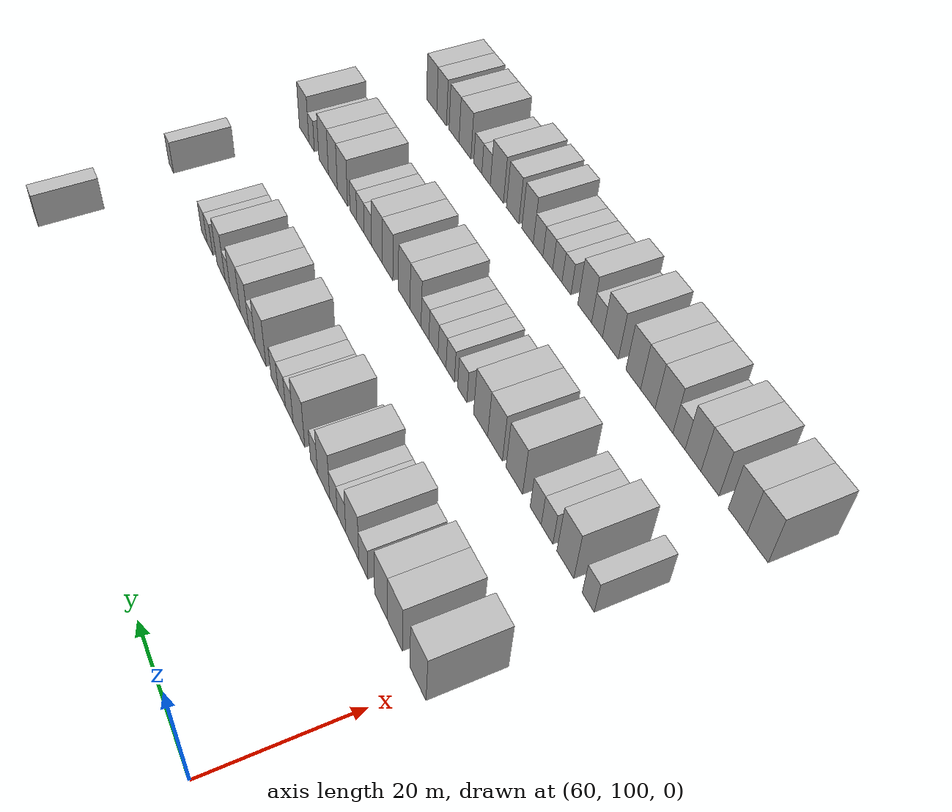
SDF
<sdf version="1.6">
 <world name="default">
  <model name="building_518">
   <static>1</static>
   <pose>69.0000 190.7205 0 0.000000 0.000000 0.000000</pose>
   <link name="link">
    <pose>0 0 3.00 0 0 0</pose>
    <collision name="collision"><geometry><box><size>10.0000 2.7455 6.0000</size></box></geometry></collision>
    <visual name="visual">
     <cast_shadows>0</cast_shadows>
     <geometry><box><size>10.0000 2.7455 6.0000</size></box></geometry>
     <material>
      <script>
       <uri>model://HANNAS_wall/materials/scripts</uri>
       <uri>model://HANNAS_wall/materials/textures</uri>
       <name>vrc/HANNAS_wall</name>
      </script>
     </material>
    </visual>
   </link>
  </model>
  <model name="building_688">
   <static>1</static>
   <pose>91.0000 100.4285 0 0.000000 0.000000 0.000000</pose>
   <link name="link">
    <pose>0 0 4.50 0 0 0</pose>
    <collision name="collision"><geometry><box><size>10.0000 4.3487 9.0000</size></box></geometry></collision>
    <visual name="visual">
     <cast_shadows>0</cast_shadows>
     <geometry><box><size>10.0000 4.3487 9.0000</size></box></geometry>
     <material>
      <script>
       <uri>model://HANNAS_wall/materials/scripts</uri>
       <uri>model://HANNAS_wall/materials/textures</uri>
       <name>vrc/HANNAS_wall</name>
      </script>
     </material>
    </visual>
   </link>
  </model>
  <model name="building_689">
   <static>1</static>
   <pose>91.0000 106.6937 0 0.000000 0.000000 0.000000</pose>
   <link name="link">
    <pose>0 0 4.50 0 0 0</pose>
    <collision name="collision"><geometry><box><size>10.0000 4.1818 9.0000</size></box></geometry></collision>
    <visual name="visual">
     <cast_shadows>0</cast_shadows>
     <geometry><box><size>10.0000 4.1818 9.0000</size></box></geometry>
     <material>
      <script>
       <uri>model://HANNAS_wall/materials/scripts</uri>
       <uri>model://HANNAS_wall/materials/textures</uri>
       <name>vrc/HANNAS_wall</name>
      </script>
     </material>
    </visual>
   </link>
  </model>
  <model name="building_690">
   <static>1</static>
   <pose>91.0000 110.6699 0 0.000000 0.000000 0.000000</pose>
   <link name="link">
    <pose>0 0 4.50 0 0 0</pose>
    <collision name="collision"><geometry><box><size>10.0000 3.7706 9.0000</size></box></geometry></collision>
    <visual name="visual">
     <cast_shadows>0</cast_shadows>
     <geometry><box><size>10.0000 3.7706 9.0000</size></box></geometry>
     <material>
      <script>
       <uri>model://HANNAS_wall/materials/scripts</uri>
       <uri>model://HANNAS_wall/materials/textures</uri>
       <name>vrc/HANNAS_wall</name>
      </script>
     </material>
    </visual>
   </link>
  </model>
  <model name="building_691">
   <static>1</static>
   <pose>91.0000 115.9385 0 0.000000 0.000000 0.000000</pose>
   <link name="link">
    <pose>0 0 3.00 0 0 0</pose>
    <collision name="collision"><geometry><box><size>10.0000 2.7666 6.0000</size></box></geometry></collision>
    <visual name="visual">
     <cast_shadows>0</cast_shadows>
     <geometry><box><size>10.0000 2.7666 6.0000</size></box></geometry>
     <material>
      <script>
       <uri>model://HANNAS_wall/materials/scripts</uri>
       <uri>model://HANNAS_wall/materials/textures</uri>
       <name>vrc/HANNAS_wall</name>
      </script>
     </material>
    </visual>
   </link>
  </model>
  <model name="building_692">
   <static>1</static>
   <pose>91.0000 119.3657 0 0.000000 0.000000 0.000000</pose>
   <link name="link">
    <pose>0 0 4.50 0 0 0</pose>
    <collision name="collision"><geometry><box><size>10.0000 4.0879 9.0000</size></box></geometry></collision>
    <visual name="visual">
     <cast_shadows>0</cast_shadows>
     <geometry><box><size>10.0000 4.0879 9.0000</size></box></geometry>
     <material>
      <script>
       <uri>model://HANNAS_wall/materials/scripts</uri>
       <uri>model://HANNAS_wall/materials/textures</uri>
       <name>vrc/HANNAS_wall</name>
      </script>
     </material>
    </visual>
   </link>
  </model>
  <model name="building_693">
   <static>1</static>
   <pose>91.0000 122.7831 0 0.000000 0.000000 0.000000</pose>
   <link name="link">
    <pose>0 0 3.00 0 0 0</pose>
    <collision name="collision"><geometry><box><size>10.0000 2.7469 6.0000</size></box></geometry></collision>
    <visual name="visual">
     <cast_shadows>0</cast_shadows>
     <geometry><box><size>10.0000 2.7469 6.0000</size></box></geometry>
     <material>
      <script>
       <uri>model://HANNAS_wall/materials/scripts</uri>
       <uri>model://HANNAS_wall/materials/textures</uri>
       <name>vrc/HANNAS_wall</name>
      </script>
     </material>
    </visual>
   </link>
  </model>
  <model name="building_694">
   <static>1</static>
   <pose>91.0000 125.3892 0 0.000000 0.000000 0.000000</pose>
   <link name="link">
    <pose>0 0 3.00 0 0 0</pose>
    <collision name="collision"><geometry><box><size>10.0000 2.4653 6.0000</size></box></geometry></collision>
    <visual name="visual">
     <cast_shadows>0</cast_shadows>
     <geometry><box><size>10.0000 2.4653 6.0000</size></box></geometry>
     <material>
      <script>
       <uri>model://HANNAS_wall/materials/scripts</uri>
       <uri>model://HANNAS_wall/materials/textures</uri>
       <name>vrc/HANNAS_wall</name>
      </script>
     </material>
    </visual>
   </link>
  </model>
  <model name="building_695">
   <static>1</static>
   <pose>91.0000 128.7026 0 0.000000 0.000000 0.000000</pose>
   <link name="link">
    <pose>0 0 4.50 0 0 0</pose>
    <collision name="collision"><geometry><box><size>10.0000 4.1614 9.0000</size></box></geometry></collision>
    <visual name="visual">
     <cast_shadows>0</cast_shadows>
     <geometry><box><size>10.0000 4.1614 9.0000</size></box></geometry>
     <material>
      <script>
       <uri>model://HANNAS_wall/materials/scripts</uri>
       <uri>model://HANNAS_wall/materials/textures</uri>
       <name>vrc/HANNAS_wall</name>
      </script>
     </material>
    </visual>
   </link>
  </model>
  <model name="building_696">
   <static>1</static>
   <pose>91.0000 132.0364 0 0.000000 0.000000 0.000000</pose>
   <link name="link">
    <pose>0 0 3.00 0 0 0</pose>
    <collision name="collision"><geometry><box><size>10.0000 2.5063 6.0000</size></box></geometry></collision>
    <visual name="visual">
     <cast_shadows>0</cast_shadows>
     <geometry><box><size>10.0000 2.5063 6.0000</size></box></geometry>
     <material>
      <script>
       <uri>model://HANNAS_wall/materials/scripts</uri>
       <uri>model://HANNAS_wall/materials/textures</uri>
       <name>vrc/HANNAS_wall</name>
      </script>
     </material>
    </visual>
   </link>
  </model>
  <model name="building_697">
   <static>1</static>
   <pose>91.0000 137.4088 0 0.000000 0.000000 0.000000</pose>
   <link name="link">
    <pose>0 0 4.50 0 0 0</pose>
    <collision name="collision"><geometry><box><size>10.0000 4.2385 9.0000</size></box></geometry></collision>
    <visual name="visual">
     <cast_shadows>0</cast_shadows>
     <geometry><box><size>10.0000 4.2385 9.0000</size></box></geometry>
     <material>
      <script>
       <uri>model://HANNAS_wall/materials/scripts</uri>
       <uri>model://HANNAS_wall/materials/textures</uri>
       <name>vrc/HANNAS_wall</name>
      </script>
     </material>
    </visual>
   </link>
  </model>
  <model name="building_698">
   <static>1</static>
   <pose>91.0000 140.9699 0 0.000000 0.000000 0.000000</pose>
   <link name="link">
    <pose>0 0 3.00 0 0 0</pose>
    <collision name="collision"><geometry><box><size>10.0000 2.8835 6.0000</size></box></geometry></collision>
    <visual name="visual">
     <cast_shadows>0</cast_shadows>
     <geometry><box><size>10.0000 2.8835 6.0000</size></box></geometry>
     <material>
      <script>
       <uri>model://HANNAS_wall/materials/scripts</uri>
       <uri>model://HANNAS_wall/materials/textures</uri>
       <name>vrc/HANNAS_wall</name>
      </script>
     </material>
    </visual>
   </link>
  </model>
  <model name="building_699">
   <static>1</static>
   <pose>91.0000 143.7903 0 0.000000 0.000000 0.000000</pose>
   <link name="link">
    <pose>0 0 3.00 0 0 0</pose>
    <collision name="collision"><geometry><box><size>10.0000 2.7574 6.0000</size></box></geometry></collision>
    <visual name="visual">
     <cast_shadows>0</cast_shadows>
     <geometry><box><size>10.0000 2.7574 6.0000</size></box></geometry>
     <material>
      <script>
       <uri>model://HANNAS_wall/materials/scripts</uri>
       <uri>model://HANNAS_wall/materials/textures</uri>
       <name>vrc/HANNAS_wall</name>
      </script>
     </material>
    </visual>
   </link>
  </model>
  <model name="building_700">
   <static>1</static>
   <pose>91.0000 146.5703 0 0.000000 0.000000 0.000000</pose>
   <link name="link">
    <pose>0 0 3.00 0 0 0</pose>
    <collision name="collision"><geometry><box><size>10.0000 2.8026 6.0000</size></box></geometry></collision>
    <visual name="visual">
     <cast_shadows>0</cast_shadows>
     <geometry><box><size>10.0000 2.8026 6.0000</size></box></geometry>
     <material>
      <script>
       <uri>model://HANNAS_wall/materials/scripts</uri>
       <uri>model://HANNAS_wall/materials/textures</uri>
       <name>vrc/HANNAS_wall</name>
      </script>
     </material>
    </visual>
   </link>
  </model>
  <model name="building_701">
   <static>1</static>
   <pose>91.0000 152.1412 0 0.000000 0.000000 0.000000</pose>
   <link name="link">
    <pose>0 0 4.50 0 0 0</pose>
    <collision name="collision"><geometry><box><size>10.0000 4.3392 9.0000</size></box></geometry></collision>
    <visual name="visual">
     <cast_shadows>0</cast_shadows>
     <geometry><box><size>10.0000 4.3392 9.0000</size></box></geometry>
     <material>
      <script>
       <uri>model://HANNAS_wall/materials/scripts</uri>
       <uri>model://HANNAS_wall/materials/textures</uri>
       <name>vrc/HANNAS_wall</name>
      </script>
     </material>
    </visual>
   </link>
  </model>
  <model name="building_702">
   <static>1</static>
   <pose>91.0000 155.6644 0 0.000000 0.000000 0.000000</pose>
   <link name="link">
    <pose>0 0 3.00 0 0 0</pose>
    <collision name="collision"><geometry><box><size>10.0000 2.7072 6.0000</size></box></geometry></collision>
    <visual name="visual">
     <cast_shadows>0</cast_shadows>
     <geometry><box><size>10.0000 2.7072 6.0000</size></box></geometry>
     <material>
      <script>
       <uri>model://HANNAS_wall/materials/scripts</uri>
       <uri>model://HANNAS_wall/materials/textures</uri>
       <name>vrc/HANNAS_wall</name>
      </script>
     </material>
    </visual>
   </link>
  </model>
  <model name="building_703">
   <static>1</static>
   <pose>91.0000 158.8404 0 0.000000 0.000000 0.000000</pose>
   <link name="link">
    <pose>0 0 4.50 0 0 0</pose>
    <collision name="collision"><geometry><box><size>10.0000 3.6449 9.0000</size></box></geometry></collision>
    <visual name="visual">
     <cast_shadows>0</cast_shadows>
     <geometry><box><size>10.0000 3.6449 9.0000</size></box></geometry>
     <material>
      <script>
       <uri>model://HANNAS_wall/materials/scripts</uri>
       <uri>model://HANNAS_wall/materials/textures</uri>
       <name>vrc/HANNAS_wall</name>
      </script>
     </material>
    </visual>
   </link>
  </model>
  <model name="building_704">
   <static>1</static>
   <pose>91.0000 162.8359 0 0.000000 0.000000 0.000000</pose>
   <link name="link">
    <pose>0 0 4.50 0 0 0</pose>
    <collision name="collision"><geometry><box><size>10.0000 4.3462 9.0000</size></box></geometry></collision>
    <visual name="visual">
     <cast_shadows>0</cast_shadows>
     <geometry><box><size>10.0000 4.3462 9.0000</size></box></geometry>
     <material>
      <script>
       <uri>model://HANNAS_wall/materials/scripts</uri>
       <uri>model://HANNAS_wall/materials/textures</uri>
       <name>vrc/HANNAS_wall</name>
      </script>
     </material>
    </visual>
   </link>
  </model>
  <model name="building_705">
   <static>1</static>
   <pose>91.0000 166.2260 0 0.000000 0.000000 0.000000</pose>
   <link name="link">
    <pose>0 0 3.00 0 0 0</pose>
    <collision name="collision"><geometry><box><size>10.0000 2.4339 6.0000</size></box></geometry></collision>
    <visual name="visual">
     <cast_shadows>0</cast_shadows>
     <geometry><box><size>10.0000 2.4339 6.0000</size></box></geometry>
     <material>
      <script>
       <uri>model://HANNAS_wall/materials/scripts</uri>
       <uri>model://HANNAS_wall/materials/textures</uri>
       <name>vrc/HANNAS_wall</name>
      </script>
     </material>
    </visual>
   </link>
  </model>
  <model name="building_706">
   <static>1</static>
   <pose>91.0000 169.3230 0 0.000000 0.000000 0.000000</pose>
   <link name="link">
    <pose>0 0 4.50 0 0 0</pose>
    <collision name="collision"><geometry><box><size>10.0000 3.7601 9.0000</size></box></geometry></collision>
    <visual name="visual">
     <cast_shadows>0</cast_shadows>
     <geometry><box><size>10.0000 3.7601 9.0000</size></box></geometry>
     <material>
      <script>
       <uri>model://HANNAS_wall/materials/scripts</uri>
       <uri>model://HANNAS_wall/materials/textures</uri>
       <name>vrc/HANNAS_wall</name>
      </script>
     </material>
    </visual>
   </link>
  </model>
  <model name="building_707">
   <static>1</static>
   <pose>91.0000 174.5781 0 0.000000 0.000000 0.000000</pose>
   <link name="link">
    <pose>0 0 3.00 0 0 0</pose>
    <collision name="collision"><geometry><box><size>10.0000 2.7500 6.0000</size></box></geometry></collision>
    <visual name="visual">
     <cast_shadows>0</cast_shadows>
     <geometry><box><size>10.0000 2.7500 6.0000</size></box></geometry>
     <material>
      <script>
       <uri>model://HANNAS_wall/materials/scripts</uri>
       <uri>model://HANNAS_wall/materials/textures</uri>
       <name>vrc/HANNAS_wall</name>
      </script>
     </material>
    </visual>
   </link>
  </model>
  <model name="building_708">
   <static>1</static>
   <pose>91.0000 177.3127 0 0.000000 0.000000 0.000000</pose>
   <link name="link">
    <pose>0 0 3.00 0 0 0</pose>
    <collision name="collision"><geometry><box><size>10.0000 2.7192 6.0000</size></box></geometry></collision>
    <visual name="visual">
     <cast_shadows>0</cast_shadows>
     <geometry><box><size>10.0000 2.7192 6.0000</size></box></geometry>
     <material>
      <script>
       <uri>model://HANNAS_wall/materials/scripts</uri>
       <uri>model://HANNAS_wall/materials/textures</uri>
       <name>vrc/HANNAS_wall</name>
      </script>
     </material>
    </visual>
   </link>
  </model>
  <model name="building_709">
   <static>1</static>
   <pose>91.0000 194.3597 0 0.000000 0.000000 0.000000</pose>
   <link name="link">
    <pose>0 0 3.00 0 0 0</pose>
    <collision name="collision"><geometry><box><size>10.0000 2.4583 6.0000</size></box></geometry></collision>
    <visual name="visual">
     <cast_shadows>0</cast_shadows>
     <geometry><box><size>10.0000 2.4583 6.0000</size></box></geometry>
     <material>
      <script>
       <uri>model://HANNAS_wall/materials/scripts</uri>
       <uri>model://HANNAS_wall/materials/textures</uri>
       <name>vrc/HANNAS_wall</name>
      </script>
     </material>
    </visual>
   </link>
  </model>
  <model name="building_878">
   <static>1</static>
   <pose>113.0000 101.7372 0 0.000000 0.000000 0.000000</pose>
   <link name="link">
    <pose>0 0 3.00 0 0 0</pose>
    <collision name="collision"><geometry><box><size>10.0000 2.7722 6.0000</size></box></geometry></collision>
    <visual name="visual">
     <cast_shadows>0</cast_shadows>
     <geometry><box><size>10.0000 2.7722 6.0000</size></box></geometry>
     <material>
      <script>
       <uri>model://HANNAS_wall/materials/scripts</uri>
       <uri>model://HANNAS_wall/materials/textures</uri>
       <name>vrc/HANNAS_wall</name>
      </script>
     </material>
    </visual>
   </link>
  </model>
  <model name="building_879">
   <static>1</static>
   <pose>113.0000 107.1683 0 0.000000 0.000000 0.000000</pose>
   <link name="link">
    <pose>0 0 4.50 0 0 0</pose>
    <collision name="collision"><geometry><box><size>10.0000 4.0901 9.0000</size></box></geometry></collision>
    <visual name="visual">
     <cast_shadows>0</cast_shadows>
     <geometry><box><size>10.0000 4.0901 9.0000</size></box></geometry>
     <material>
      <script>
       <uri>model://HANNAS_wall/materials/scripts</uri>
       <uri>model://HANNAS_wall/materials/textures</uri>
       <name>vrc/HANNAS_wall</name>
      </script>
     </material>
    </visual>
   </link>
  </model>
  <model name="building_880">
   <static>1</static>
   <pose>113.0000 111.6835 0 0.000000 0.000000 0.000000</pose>
   <link name="link">
    <pose>0 0 3.00 0 0 0</pose>
    <collision name="collision"><geometry><box><size>10.0000 2.9402 6.0000</size></box></geometry></collision>
    <visual name="visual">
     <cast_shadows>0</cast_shadows>
     <geometry><box><size>10.0000 2.9402 6.0000</size></box></geometry>
     <material>
      <script>
       <uri>model://HANNAS_wall/materials/scripts</uri>
       <uri>model://HANNAS_wall/materials/textures</uri>
       <name>vrc/HANNAS_wall</name>
      </script>
     </material>
    </visual>
   </link>
  </model>
  <model name="building_881">
   <static>1</static>
   <pose>113.0000 114.5744 0 0.000000 0.000000 0.000000</pose>
   <link name="link">
    <pose>0 0 3.00 0 0 0</pose>
    <collision name="collision"><geometry><box><size>10.0000 2.8418 6.0000</size></box></geometry></collision>
    <visual name="visual">
     <cast_shadows>0</cast_shadows>
     <geometry><box><size>10.0000 2.8418 6.0000</size></box></geometry>
     <material>
      <script>
       <uri>model://HANNAS_wall/materials/scripts</uri>
       <uri>model://HANNAS_wall/materials/textures</uri>
       <name>vrc/HANNAS_wall</name>
      </script>
     </material>
    </visual>
   </link>
  </model>
  <model name="building_882">
   <static>1</static>
   <pose>113.0000 120.2278 0 0.000000 0.000000 0.000000</pose>
   <link name="link">
    <pose>0 0 4.50 0 0 0</pose>
    <collision name="collision"><geometry><box><size>10.0000 4.4649 9.0000</size></box></geometry></collision>
    <visual name="visual">
     <cast_shadows>0</cast_shadows>
     <geometry><box><size>10.0000 4.4649 9.0000</size></box></geometry>
     <material>
      <script>
       <uri>model://HANNAS_wall/materials/scripts</uri>
       <uri>model://HANNAS_wall/materials/textures</uri>
       <name>vrc/HANNAS_wall</name>
      </script>
     </material>
    </visual>
   </link>
  </model>
  <model name="building_883">
   <static>1</static>
   <pose>113.0000 125.5309 0 0.000000 0.000000 0.000000</pose>
   <link name="link">
    <pose>0 0 4.50 0 0 0</pose>
    <collision name="collision"><geometry><box><size>10.0000 4.1413 9.0000</size></box></geometry></collision>
    <visual name="visual">
     <cast_shadows>0</cast_shadows>
     <geometry><box><size>10.0000 4.1413 9.0000</size></box></geometry>
     <material>
      <script>
       <uri>model://HANNAS_wall/materials/scripts</uri>
       <uri>model://HANNAS_wall/materials/textures</uri>
       <name>vrc/HANNAS_wall</name>
      </script>
     </material>
    </visual>
   </link>
  </model>
  <model name="building_884">
   <static>1</static>
   <pose>113.0000 129.6614 0 0.000000 0.000000 0.000000</pose>
   <link name="link">
    <pose>0 0 4.50 0 0 0</pose>
    <collision name="collision"><geometry><box><size>10.0000 4.1196 9.0000</size></box></geometry></collision>
    <visual name="visual">
     <cast_shadows>0</cast_shadows>
     <geometry><box><size>10.0000 4.1196 9.0000</size></box></geometry>
     <material>
      <script>
       <uri>model://HANNAS_wall/materials/scripts</uri>
       <uri>model://HANNAS_wall/materials/textures</uri>
       <name>vrc/HANNAS_wall</name>
      </script>
     </material>
    </visual>
   </link>
  </model>
  <model name="building_885">
   <static>1</static>
   <pose>113.0000 135.1203 0 0.000000 0.000000 0.000000</pose>
   <link name="link">
    <pose>0 0 3.00 0 0 0</pose>
    <collision name="collision"><geometry><box><size>10.0000 2.7982 6.0000</size></box></geometry></collision>
    <visual name="visual">
     <cast_shadows>0</cast_shadows>
     <geometry><box><size>10.0000 2.7982 6.0000</size></box></geometry>
     <material>
      <script>
       <uri>model://HANNAS_wall/materials/scripts</uri>
       <uri>model://HANNAS_wall/materials/textures</uri>
       <name>vrc/HANNAS_wall</name>
      </script>
     </material>
    </visual>
   </link>
  </model>
  <model name="building_886">
   <static>1</static>
   <pose>113.0000 138.8276 0 0.000000 0.000000 0.000000</pose>
   <link name="link">
    <pose>0 0 3.00 0 0 0</pose>
    <collision name="collision"><geometry><box><size>10.0000 2.6165 6.0000</size></box></geometry></collision>
    <visual name="visual">
     <cast_shadows>0</cast_shadows>
     <geometry><box><size>10.0000 2.6165 6.0000</size></box></geometry>
     <material>
      <script>
       <uri>model://HANNAS_wall/materials/scripts</uri>
       <uri>model://HANNAS_wall/materials/textures</uri>
       <name>vrc/HANNAS_wall</name>
      </script>
     </material>
    </visual>
   </link>
  </model>
  <model name="building_887">
   <static>1</static>
   <pose>113.0000 141.4063 0 0.000000 0.000000 0.000000</pose>
   <link name="link">
    <pose>0 0 3.00 0 0 0</pose>
    <collision name="collision"><geometry><box><size>10.0000 2.5409 6.0000</size></box></geometry></collision>
    <visual name="visual">
     <cast_shadows>0</cast_shadows>
     <geometry><box><size>10.0000 2.5409 6.0000</size></box></geometry>
     <material>
      <script>
       <uri>model://HANNAS_wall/materials/scripts</uri>
       <uri>model://HANNAS_wall/materials/textures</uri>
       <name>vrc/HANNAS_wall</name>
      </script>
     </material>
    </visual>
   </link>
  </model>
  <model name="building_888">
   <static>1</static>
   <pose>113.0000 144.1603 0 0.000000 0.000000 0.000000</pose>
   <link name="link">
    <pose>0 0 3.00 0 0 0</pose>
    <collision name="collision"><geometry><box><size>10.0000 2.9670 6.0000</size></box></geometry></collision>
    <visual name="visual">
     <cast_shadows>0</cast_shadows>
     <geometry><box><size>10.0000 2.9670 6.0000</size></box></geometry>
     <material>
      <script>
       <uri>model://HANNAS_wall/materials/scripts</uri>
       <uri>model://HANNAS_wall/materials/textures</uri>
       <name>vrc/HANNAS_wall</name>
      </script>
     </material>
    </visual>
   </link>
  </model>
  <model name="building_889">
   <static>1</static>
   <pose>113.0000 146.9454 0 0.000000 0.000000 0.000000</pose>
   <link name="link">
    <pose>0 0 3.00 0 0 0</pose>
    <collision name="collision"><geometry><box><size>10.0000 2.6033 6.0000</size></box></geometry></collision>
    <visual name="visual">
     <cast_shadows>0</cast_shadows>
     <geometry><box><size>10.0000 2.6033 6.0000</size></box></geometry>
     <material>
      <script>
       <uri>model://HANNAS_wall/materials/scripts</uri>
       <uri>model://HANNAS_wall/materials/textures</uri>
       <name>vrc/HANNAS_wall</name>
      </script>
     </material>
    </visual>
   </link>
  </model>
  <model name="building_890">
   <static>1</static>
   <pose>113.0000 150.1318 0 0.000000 0.000000 0.000000</pose>
   <link name="link">
    <pose>0 0 4.50 0 0 0</pose>
    <collision name="collision"><geometry><box><size>10.0000 3.7696 9.0000</size></box></geometry></collision>
    <visual name="visual">
     <cast_shadows>0</cast_shadows>
     <geometry><box><size>10.0000 3.7696 9.0000</size></box></geometry>
     <material>
      <script>
       <uri>model://HANNAS_wall/materials/scripts</uri>
       <uri>model://HANNAS_wall/materials/textures</uri>
       <name>vrc/HANNAS_wall</name>
      </script>
     </material>
    </visual>
   </link>
  </model>
  <model name="building_891">
   <static>1</static>
   <pose>113.0000 154.0256 0 0.000000 0.000000 0.000000</pose>
   <link name="link">
    <pose>0 0 4.50 0 0 0</pose>
    <collision name="collision"><geometry><box><size>10.0000 4.0179 9.0000</size></box></geometry></collision>
    <visual name="visual">
     <cast_shadows>0</cast_shadows>
     <geometry><box><size>10.0000 4.0179 9.0000</size></box></geometry>
     <material>
      <script>
       <uri>model://HANNAS_wall/materials/scripts</uri>
       <uri>model://HANNAS_wall/materials/textures</uri>
       <name>vrc/HANNAS_wall</name>
      </script>
     </material>
    </visual>
   </link>
  </model>
  <model name="building_892">
   <static>1</static>
   <pose>113.0000 159.9614 0 0.000000 0.000000 0.000000</pose>
   <link name="link">
    <pose>0 0 4.50 0 0 0</pose>
    <collision name="collision"><geometry><box><size>10.0000 3.8539 9.0000</size></box></geometry></collision>
    <visual name="visual">
     <cast_shadows>0</cast_shadows>
     <geometry><box><size>10.0000 3.8539 9.0000</size></box></geometry>
     <material>
      <script>
       <uri>model://HANNAS_wall/materials/scripts</uri>
       <uri>model://HANNAS_wall/materials/textures</uri>
       <name>vrc/HANNAS_wall</name>
      </script>
     </material>
    </visual>
   </link>
  </model>
  <model name="building_893">
   <static>1</static>
   <pose>113.0000 163.8826 0 0.000000 0.000000 0.000000</pose>
   <link name="link">
    <pose>0 0 4.50 0 0 0</pose>
    <collision name="collision"><geometry><box><size>10.0000 3.9885 9.0000</size></box></geometry></collision>
    <visual name="visual">
     <cast_shadows>0</cast_shadows>
     <geometry><box><size>10.0000 3.9885 9.0000</size></box></geometry>
     <material>
      <script>
       <uri>model://HANNAS_wall/materials/scripts</uri>
       <uri>model://HANNAS_wall/materials/textures</uri>
       <name>vrc/HANNAS_wall</name>
      </script>
     </material>
    </visual>
   </link>
  </model>
  <model name="building_894">
   <static>1</static>
   <pose>113.0000 167.3027 0 0.000000 0.000000 0.000000</pose>
   <link name="link">
    <pose>0 0 3.00 0 0 0</pose>
    <collision name="collision"><geometry><box><size>10.0000 2.8518 6.0000</size></box></geometry></collision>
    <visual name="visual">
     <cast_shadows>0</cast_shadows>
     <geometry><box><size>10.0000 2.8518 6.0000</size></box></geometry>
     <material>
      <script>
       <uri>model://HANNAS_wall/materials/scripts</uri>
       <uri>model://HANNAS_wall/materials/textures</uri>
       <name>vrc/HANNAS_wall</name>
      </script>
     </material>
    </visual>
   </link>
  </model>
  <model name="building_895">
   <static>1</static>
   <pose>113.0000 170.1723 0 0.000000 0.000000 0.000000</pose>
   <link name="link">
    <pose>0 0 3.00 0 0 0</pose>
    <collision name="collision"><geometry><box><size>10.0000 2.8874 6.0000</size></box></geometry></collision>
    <visual name="visual">
     <cast_shadows>0</cast_shadows>
     <geometry><box><size>10.0000 2.8874 6.0000</size></box></geometry>
     <material>
      <script>
       <uri>model://HANNAS_wall/materials/scripts</uri>
       <uri>model://HANNAS_wall/materials/textures</uri>
       <name>vrc/HANNAS_wall</name>
      </script>
     </material>
    </visual>
   </link>
  </model>
  <model name="building_896">
   <static>1</static>
   <pose>113.0000 172.9494 0 0.000000 0.000000 0.000000</pose>
   <link name="link">
    <pose>0 0 3.00 0 0 0</pose>
    <collision name="collision"><geometry><box><size>10.0000 2.6667 6.0000</size></box></geometry></collision>
    <visual name="visual">
     <cast_shadows>0</cast_shadows>
     <geometry><box><size>10.0000 2.6667 6.0000</size></box></geometry>
     <material>
      <script>
       <uri>model://HANNAS_wall/materials/scripts</uri>
       <uri>model://HANNAS_wall/materials/textures</uri>
       <name>vrc/HANNAS_wall</name>
      </script>
     </material>
    </visual>
   </link>
  </model>
  <model name="building_897">
   <static>1</static>
   <pose>113.0000 177.3713 0 0.000000 0.000000 0.000000</pose>
   <link name="link">
    <pose>0 0 4.50 0 0 0</pose>
    <collision name="collision"><geometry><box><size>10.0000 4.1772 9.0000</size></box></geometry></collision>
    <visual name="visual">
     <cast_shadows>0</cast_shadows>
     <geometry><box><size>10.0000 4.1772 9.0000</size></box></geometry>
     <material>
      <script>
       <uri>model://HANNAS_wall/materials/scripts</uri>
       <uri>model://HANNAS_wall/materials/textures</uri>
       <name>vrc/HANNAS_wall</name>
      </script>
     </material>
    </visual>
   </link>
  </model>
  <model name="building_898">
   <static>1</static>
   <pose>113.0000 181.3250 0 0.000000 0.000000 0.000000</pose>
   <link name="link">
    <pose>0 0 4.50 0 0 0</pose>
    <collision name="collision"><geometry><box><size>10.0000 3.7302 9.0000</size></box></geometry></collision>
    <visual name="visual">
     <cast_shadows>0</cast_shadows>
     <geometry><box><size>10.0000 3.7302 9.0000</size></box></geometry>
     <material>
      <script>
       <uri>model://HANNAS_wall/materials/scripts</uri>
       <uri>model://HANNAS_wall/materials/textures</uri>
       <name>vrc/HANNAS_wall</name>
      </script>
     </material>
    </visual>
   </link>
  </model>
  <model name="building_899">
   <static>1</static>
   <pose>113.0000 185.2459 0 0.000000 0.000000 0.000000</pose>
   <link name="link">
    <pose>0 0 4.50 0 0 0</pose>
    <collision name="collision"><geometry><box><size>10.0000 4.1116 9.0000</size></box></geometry></collision>
    <visual name="visual">
     <cast_shadows>0</cast_shadows>
     <geometry><box><size>10.0000 4.1116 9.0000</size></box></geometry>
     <material>
      <script>
       <uri>model://HANNAS_wall/materials/scripts</uri>
       <uri>model://HANNAS_wall/materials/textures</uri>
       <name>vrc/HANNAS_wall</name>
      </script>
     </material>
    </visual>
   </link>
  </model>
  <model name="building_900">
   <static>1</static>
   <pose>113.0000 190.5273 0 0.000000 0.000000 0.000000</pose>
   <link name="link">
    <pose>0 0 3.00 0 0 0</pose>
    <collision name="collision"><geometry><box><size>10.0000 2.4511 6.0000</size></box></geometry></collision>
    <visual name="visual">
     <cast_shadows>0</cast_shadows>
     <geometry><box><size>10.0000 2.4511 6.0000</size></box></geometry>
     <material>
      <script>
       <uri>model://HANNAS_wall/materials/scripts</uri>
       <uri>model://HANNAS_wall/materials/textures</uri>
       <name>vrc/HANNAS_wall</name>
      </script>
     </material>
    </visual>
   </link>
  </model>
  <model name="building_901">
   <static>1</static>
   <pose>113.0000 193.8983 0 0.000000 0.000000 0.000000</pose>
   <link name="link">
    <pose>0 0 4.50 0 0 0</pose>
    <collision name="collision"><geometry><box><size>10.0000 4.2910 9.0000</size></box></geometry></collision>
    <visual name="visual">
     <cast_shadows>0</cast_shadows>
     <geometry><box><size>10.0000 4.2910 9.0000</size></box></geometry>
     <material>
      <script>
       <uri>model://HANNAS_wall/materials/scripts</uri>
       <uri>model://HANNAS_wall/materials/textures</uri>
       <name>vrc/HANNAS_wall</name>
      </script>
     </material>
    </visual>
   </link>
  </model>
  <model name="building_1070">
   <static>1</static>
   <pose>135.0000 100.0792 0 0.000000 0.000000 0.000000</pose>
   <link name="link">
    <pose>0 0 4.50 0 0 0</pose>
    <collision name="collision"><geometry><box><size>10.0000 4.3160 9.0000</size></box></geometry></collision>
    <visual name="visual">
     <cast_shadows>0</cast_shadows>
     <geometry><box><size>10.0000 4.3160 9.0000</size></box></geometry>
     <material>
      <script>
       <uri>model://HANNAS_wall/materials/scripts</uri>
       <uri>model://HANNAS_wall/materials/textures</uri>
       <name>vrc/HANNAS_wall</name>
      </script>
     </material>
    </visual>
   </link>
  </model>
  <model name="building_1071">
   <static>1</static>
   <pose>135.0000 104.2163 0 0.000000 0.000000 0.000000</pose>
   <link name="link">
    <pose>0 0 4.50 0 0 0</pose>
    <collision name="collision"><geometry><box><size>10.0000 3.9583 9.0000</size></box></geometry></collision>
    <visual name="visual">
     <cast_shadows>0</cast_shadows>
     <geometry><box><size>10.0000 3.9583 9.0000</size></box></geometry>
     <material>
      <script>
       <uri>model://HANNAS_wall/materials/scripts</uri>
       <uri>model://HANNAS_wall/materials/textures</uri>
       <name>vrc/HANNAS_wall</name>
      </script>
     </material>
    </visual>
   </link>
  </model>
  <model name="building_1072">
   <static>1</static>
   <pose>135.0000 110.2086 0 0.000000 0.000000 0.000000</pose>
   <link name="link">
    <pose>0 0 4.50 0 0 0</pose>
    <collision name="collision"><geometry><box><size>10.0000 4.0262 9.0000</size></box></geometry></collision>
    <visual name="visual">
     <cast_shadows>0</cast_shadows>
     <geometry><box><size>10.0000 4.0262 9.0000</size></box></geometry>
     <material>
      <script>
       <uri>model://HANNAS_wall/materials/scripts</uri>
       <uri>model://HANNAS_wall/materials/textures</uri>
       <name>vrc/HANNAS_wall</name>
      </script>
     </material>
    </visual>
   </link>
  </model>
  <model name="building_1073">
   <static>1</static>
   <pose>135.0000 114.0399 0 0.000000 0.000000 0.000000</pose>
   <link name="link">
    <pose>0 0 4.50 0 0 0</pose>
    <collision name="collision"><geometry><box><size>10.0000 3.6364 9.0000</size></box></geometry></collision>
    <visual name="visual">
     <cast_shadows>0</cast_shadows>
     <geometry><box><size>10.0000 3.6364 9.0000</size></box></geometry>
     <material>
      <script>
       <uri>model://HANNAS_wall/materials/scripts</uri>
       <uri>model://HANNAS_wall/materials/textures</uri>
       <name>vrc/HANNAS_wall</name>
      </script>
     </material>
    </visual>
   </link>
  </model>
  <model name="building_1074">
   <static>1</static>
   <pose>135.0000 117.2837 0 0.000000 0.000000 0.000000</pose>
   <link name="link">
    <pose>0 0 3.00 0 0 0</pose>
    <collision name="collision"><geometry><box><size>10.0000 2.8511 6.0000</size></box></geometry></collision>
    <visual name="visual">
     <cast_shadows>0</cast_shadows>
     <geometry><box><size>10.0000 2.8511 6.0000</size></box></geometry>
     <material>
      <script>
       <uri>model://HANNAS_wall/materials/scripts</uri>
       <uri>model://HANNAS_wall/materials/textures</uri>
       <name>vrc/HANNAS_wall</name>
      </script>
     </material>
    </visual>
   </link>
  </model>
  <model name="building_1075">
   <static>1</static>
   <pose>135.0000 120.8584 0 0.000000 0.000000 0.000000</pose>
   <link name="link">
    <pose>0 0 4.50 0 0 0</pose>
    <collision name="collision"><geometry><box><size>10.0000 4.2984 9.0000</size></box></geometry></collision>
    <visual name="visual">
     <cast_shadows>0</cast_shadows>
     <geometry><box><size>10.0000 4.2984 9.0000</size></box></geometry>
     <material>
      <script>
       <uri>model://HANNAS_wall/materials/scripts</uri>
       <uri>model://HANNAS_wall/materials/textures</uri>
       <name>vrc/HANNAS_wall</name>
      </script>
     </material>
    </visual>
   </link>
  </model>
  <model name="building_1076">
   <static>1</static>
   <pose>135.0000 124.8150 0 0.000000 0.000000 0.000000</pose>
   <link name="link">
    <pose>0 0 4.50 0 0 0</pose>
    <collision name="collision"><geometry><box><size>10.0000 3.6147 9.0000</size></box></geometry></collision>
    <visual name="visual">
     <cast_shadows>0</cast_shadows>
     <geometry><box><size>10.0000 3.6147 9.0000</size></box></geometry>
     <material>
      <script>
       <uri>model://HANNAS_wall/materials/scripts</uri>
       <uri>model://HANNAS_wall/materials/textures</uri>
       <name>vrc/HANNAS_wall</name>
      </script>
     </material>
    </visual>
   </link>
  </model>
  <model name="building_1077">
   <static>1</static>
   <pose>135.0000 128.4961 0 0.000000 0.000000 0.000000</pose>
   <link name="link">
    <pose>0 0 4.50 0 0 0</pose>
    <collision name="collision"><geometry><box><size>10.0000 3.7475 9.0000</size></box></geometry></collision>
    <visual name="visual">
     <cast_shadows>0</cast_shadows>
     <geometry><box><size>10.0000 3.7475 9.0000</size></box></geometry>
     <material>
      <script>
       <uri>model://HANNAS_wall/materials/scripts</uri>
       <uri>model://HANNAS_wall/materials/textures</uri>
       <name>vrc/HANNAS_wall</name>
      </script>
     </material>
    </visual>
   </link>
  </model>
  <model name="building_1078">
   <static>1</static>
   <pose>135.0000 134.4955 0 0.000000 0.000000 0.000000</pose>
   <link name="link">
    <pose>0 0 4.50 0 0 0</pose>
    <collision name="collision"><geometry><box><size>10.0000 4.2513 9.0000</size></box></geometry></collision>
    <visual name="visual">
     <cast_shadows>0</cast_shadows>
     <geometry><box><size>10.0000 4.2513 9.0000</size></box></geometry>
     <material>
      <script>
       <uri>model://HANNAS_wall/materials/scripts</uri>
       <uri>model://HANNAS_wall/materials/textures</uri>
       <name>vrc/HANNAS_wall</name>
      </script>
     </material>
    </visual>
   </link>
  </model>
  <model name="building_1079">
   <static>1</static>
   <pose>135.0000 138.1141 0 0.000000 0.000000 0.000000</pose>
   <link name="link">
    <pose>0 0 3.00 0 0 0</pose>
    <collision name="collision"><geometry><box><size>10.0000 2.9859 6.0000</size></box></geometry></collision>
    <visual name="visual">
     <cast_shadows>0</cast_shadows>
     <geometry><box><size>10.0000 2.9859 6.0000</size></box></geometry>
     <material>
      <script>
       <uri>model://HANNAS_wall/materials/scripts</uri>
       <uri>model://HANNAS_wall/materials/textures</uri>
       <name>vrc/HANNAS_wall</name>
      </script>
     </material>
    </visual>
   </link>
  </model>
  <model name="building_1080">
   <static>1</static>
   <pose>135.0000 141.5428 0 0.000000 0.000000 0.000000</pose>
   <link name="link">
    <pose>0 0 4.50 0 0 0</pose>
    <collision name="collision"><geometry><box><size>10.0000 3.8715 9.0000</size></box></geometry></collision>
    <visual name="visual">
     <cast_shadows>0</cast_shadows>
     <geometry><box><size>10.0000 3.8715 9.0000</size></box></geometry>
     <material>
      <script>
       <uri>model://HANNAS_wall/materials/scripts</uri>
       <uri>model://HANNAS_wall/materials/textures</uri>
       <name>vrc/HANNAS_wall</name>
      </script>
     </material>
    </visual>
   </link>
  </model>
  <model name="building_1081">
   <static>1</static>
   <pose>135.0000 146.7933 0 0.000000 0.000000 0.000000</pose>
   <link name="link">
    <pose>0 0 3.00 0 0 0</pose>
    <collision name="collision"><geometry><box><size>10.0000 2.6296 6.0000</size></box></geometry></collision>
    <visual name="visual">
     <cast_shadows>0</cast_shadows>
     <geometry><box><size>10.0000 2.6296 6.0000</size></box></geometry>
     <material>
      <script>
       <uri>model://HANNAS_wall/materials/scripts</uri>
       <uri>model://HANNAS_wall/materials/textures</uri>
       <name>vrc/HANNAS_wall</name>
      </script>
     </material>
    </visual>
   </link>
  </model>
  <model name="building_1082">
   <static>1</static>
   <pose>135.0000 149.5031 0 0.000000 0.000000 0.000000</pose>
   <link name="link">
    <pose>0 0 3.00 0 0 0</pose>
    <collision name="collision"><geometry><box><size>10.0000 2.7901 6.0000</size></box></geometry></collision>
    <visual name="visual">
     <cast_shadows>0</cast_shadows>
     <geometry><box><size>10.0000 2.7901 6.0000</size></box></geometry>
     <material>
      <script>
       <uri>model://HANNAS_wall/materials/scripts</uri>
       <uri>model://HANNAS_wall/materials/textures</uri>
       <name>vrc/HANNAS_wall</name>
      </script>
     </material>
    </visual>
   </link>
  </model>
  <model name="building_1083">
   <static>1</static>
   <pose>135.0000 152.3775 0 0.000000 0.000000 0.000000</pose>
   <link name="link">
    <pose>0 0 3.00 0 0 0</pose>
    <collision name="collision"><geometry><box><size>10.0000 2.9587 6.0000</size></box></geometry></collision>
    <visual name="visual">
     <cast_shadows>0</cast_shadows>
     <geometry><box><size>10.0000 2.9587 6.0000</size></box></geometry>
     <material>
      <script>
       <uri>model://HANNAS_wall/materials/scripts</uri>
       <uri>model://HANNAS_wall/materials/textures</uri>
       <name>vrc/HANNAS_wall</name>
      </script>
     </material>
    </visual>
   </link>
  </model>
  <model name="building_1084">
   <static>1</static>
   <pose>135.0000 155.3515 0 0.000000 0.000000 0.000000</pose>
   <link name="link">
    <pose>0 0 3.00 0 0 0</pose>
    <collision name="collision"><geometry><box><size>10.0000 2.9893 6.0000</size></box></geometry></collision>
    <visual name="visual">
     <cast_shadows>0</cast_shadows>
     <geometry><box><size>10.0000 2.9893 6.0000</size></box></geometry>
     <material>
      <script>
       <uri>model://HANNAS_wall/materials/scripts</uri>
       <uri>model://HANNAS_wall/materials/textures</uri>
       <name>vrc/HANNAS_wall</name>
      </script>
     </material>
    </visual>
   </link>
  </model>
  <model name="building_1085">
   <static>1</static>
   <pose>135.0000 158.6643 0 0.000000 0.000000 0.000000</pose>
   <link name="link">
    <pose>0 0 4.50 0 0 0</pose>
    <collision name="collision"><geometry><box><size>10.0000 3.6362 9.0000</size></box></geometry></collision>
    <visual name="visual">
     <cast_shadows>0</cast_shadows>
     <geometry><box><size>10.0000 3.6362 9.0000</size></box></geometry>
     <material>
      <script>
       <uri>model://HANNAS_wall/materials/scripts</uri>
       <uri>model://HANNAS_wall/materials/textures</uri>
       <name>vrc/HANNAS_wall</name>
      </script>
     </material>
    </visual>
   </link>
  </model>
  <model name="building_1086">
   <static>1</static>
   <pose>135.0000 163.5028 0 0.000000 0.000000 0.000000</pose>
   <link name="link">
    <pose>0 0 4.50 0 0 0</pose>
    <collision name="collision"><geometry><box><size>10.0000 4.0408 9.0000</size></box></geometry></collision>
    <visual name="visual">
     <cast_shadows>0</cast_shadows>
     <geometry><box><size>10.0000 4.0408 9.0000</size></box></geometry>
     <material>
      <script>
       <uri>model://HANNAS_wall/materials/scripts</uri>
       <uri>model://HANNAS_wall/materials/textures</uri>
       <name>vrc/HANNAS_wall</name>
      </script>
     </material>
    </visual>
   </link>
  </model>
  <model name="building_1087">
   <static>1</static>
   <pose>135.0000 168.7628 0 0.000000 0.000000 0.000000</pose>
   <link name="link">
    <pose>0 0 4.50 0 0 0</pose>
    <collision name="collision"><geometry><box><size>10.0000 4.4792 9.0000</size></box></geometry></collision>
    <visual name="visual">
     <cast_shadows>0</cast_shadows>
     <geometry><box><size>10.0000 4.4792 9.0000</size></box></geometry>
     <material>
      <script>
       <uri>model://HANNAS_wall/materials/scripts</uri>
       <uri>model://HANNAS_wall/materials/textures</uri>
       <name>vrc/HANNAS_wall</name>
      </script>
     </material>
    </visual>
   </link>
  </model>
  <model name="building_1088">
   <static>1</static>
   <pose>135.0000 172.4746 0 0.000000 0.000000 0.000000</pose>
   <link name="link">
    <pose>0 0 3.00 0 0 0</pose>
    <collision name="collision"><geometry><box><size>10.0000 2.9444 6.0000</size></box></geometry></collision>
    <visual name="visual">
     <cast_shadows>0</cast_shadows>
     <geometry><box><size>10.0000 2.9444 6.0000</size></box></geometry>
     <material>
      <script>
       <uri>model://HANNAS_wall/materials/scripts</uri>
       <uri>model://HANNAS_wall/materials/textures</uri>
       <name>vrc/HANNAS_wall</name>
      </script>
     </material>
    </visual>
   </link>
  </model>
  <model name="building_1089">
   <static>1</static>
   <pose>135.0000 175.3862 0 0.000000 0.000000 0.000000</pose>
   <link name="link">
    <pose>0 0 3.00 0 0 0</pose>
    <collision name="collision"><geometry><box><size>10.0000 2.8788 6.0000</size></box></geometry></collision>
    <visual name="visual">
     <cast_shadows>0</cast_shadows>
     <geometry><box><size>10.0000 2.8788 6.0000</size></box></geometry>
     <material>
      <script>
       <uri>model://HANNAS_wall/materials/scripts</uri>
       <uri>model://HANNAS_wall/materials/textures</uri>
       <name>vrc/HANNAS_wall</name>
      </script>
     </material>
    </visual>
   </link>
  </model>
  <model name="building_1090">
   <static>1</static>
   <pose>135.0000 180.0199 0 0.000000 0.000000 0.000000</pose>
   <link name="link">
    <pose>0 0 4.50 0 0 0</pose>
    <collision name="collision"><geometry><box><size>10.0000 4.3886 9.0000</size></box></geometry></collision>
    <visual name="visual">
     <cast_shadows>0</cast_shadows>
     <geometry><box><size>10.0000 4.3886 9.0000</size></box></geometry>
     <material>
      <script>
       <uri>model://HANNAS_wall/materials/scripts</uri>
       <uri>model://HANNAS_wall/materials/textures</uri>
       <name>vrc/HANNAS_wall</name>
      </script>
     </material>
    </visual>
   </link>
  </model>
  <model name="building_1091">
   <static>1</static>
   <pose>135.0000 184.0745 0 0.000000 0.000000 0.000000</pose>
   <link name="link">
    <pose>0 0 4.50 0 0 0</pose>
    <collision name="collision"><geometry><box><size>10.0000 3.7207 9.0000</size></box></geometry></collision>
    <visual name="visual">
     <cast_shadows>0</cast_shadows>
     <geometry><box><size>10.0000 3.7207 9.0000</size></box></geometry>
     <material>
      <script>
       <uri>model://HANNAS_wall/materials/scripts</uri>
       <uri>model://HANNAS_wall/materials/textures</uri>
       <name>vrc/HANNAS_wall</name>
      </script>
     </material>
    </visual>
   </link>
  </model>
  <model name="building_1092">
   <static>1</static>
   <pose>135.0000 188.8012 0 0.000000 0.000000 0.000000</pose>
   <link name="link">
    <pose>0 0 4.50 0 0 0</pose>
    <collision name="collision"><geometry><box><size>10.0000 3.7326 9.0000</size></box></geometry></collision>
    <visual name="visual">
     <cast_shadows>0</cast_shadows>
     <geometry><box><size>10.0000 3.7326 9.0000</size></box></geometry>
     <material>
      <script>
       <uri>model://HANNAS_wall/materials/scripts</uri>
       <uri>model://HANNAS_wall/materials/textures</uri>
       <name>vrc/HANNAS_wall</name>
      </script>
     </material>
    </visual>
   </link>
  </model>
  <model name="building_1093">
   <static>1</static>
   <pose>135.0000 192.6822 0 0.000000 0.000000 0.000000</pose>
   <link name="link">
    <pose>0 0 4.50 0 0 0</pose>
    <collision name="collision"><geometry><box><size>10.0000 4.0296 9.0000</size></box></geometry></collision>
    <visual name="visual">
     <cast_shadows>0</cast_shadows>
     <geometry><box><size>10.0000 4.0296 9.0000</size></box></geometry>
     <material>
      <script>
       <uri>model://HANNAS_wall/materials/scripts</uri>
       <uri>model://HANNAS_wall/materials/textures</uri>
       <name>vrc/HANNAS_wall</name>
      </script>
     </material>
    </visual>
   </link>
  </model>
 </world>
</sdf>
